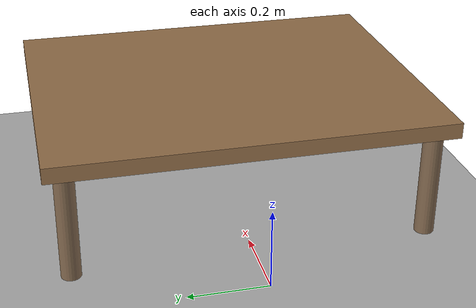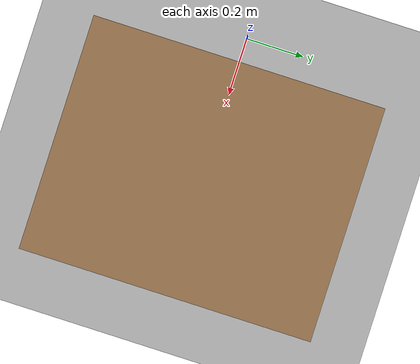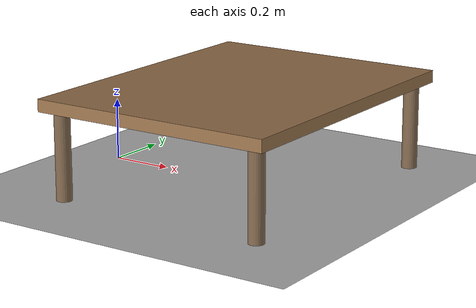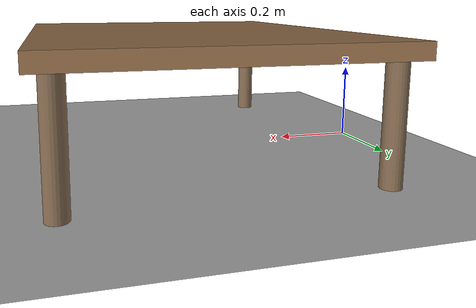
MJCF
<!-- Forge tabletop workspace.
     Provides the table surface, lighting, and ground plane.
     Robot and objects are loaded by the scenario builder. -->
<mujoco model="tabletop">
  <compiler angle="radian"/>

  <option timestep="0.002" gravity="0 0 -9.81" integrator="implicit"/>

  <visual>
    <headlight diffuse="0.6 0.6 0.6" ambient="0.3 0.3 0.3" specular="0 0 0"/>
  </visual>

  <asset>
    <texture name="grid" type="2d" builtin="checker" rgb1="0.8 0.8 0.8"
             rgb2="0.6 0.6 0.6" width="512" height="512"/>
    <material name="grid_mat" texture="grid" texrepeat="8 8" reflectance="0.1"/>
    <material name="table_mat" rgba="0.6 0.45 0.3 1" reflectance="0.05"/>
    <material name="red_mat" rgba="0.9 0.1 0.1 1"/>
    <material name="blue_mat" rgba="0.1 0.1 0.9 1"/>
    <material name="green_mat" rgba="0.1 0.7 0.1 0.3"/>
  </asset>

  <worldbody>
    <!-- Ground plane -->
    <geom name="floor" type="plane" size="2 2 0.01" material="grid_mat" condim="3"/>

    <!-- Lighting -->
    <light pos="0.5 0 1.5" dir="0 0 -1" diffuse="0.8 0.8 0.8"/>
    <light pos="-0.5 0.5 1.5" dir="0.5 -0.5 -1" diffuse="0.4 0.4 0.4"/>

    <!-- Table -->
    <body name="table" pos="0.5 0.0 0.3">
      <geom name="table_top" type="box" size="0.4 0.5 0.02" material="table_mat"
            mass="20" condim="4"/>
      <!-- Table legs -->
      <geom type="cylinder" pos="-0.35 -0.45 -0.15" size="0.025 0.15" rgba="0.5 0.4 0.3 1"/>
      <geom type="cylinder" pos="0.35 -0.45 -0.15" size="0.025 0.15" rgba="0.5 0.4 0.3 1"/>
      <geom type="cylinder" pos="-0.35 0.45 -0.15" size="0.025 0.15" rgba="0.5 0.4 0.3 1"/>
      <geom type="cylinder" pos="0.35 0.45 -0.15" size="0.025 0.15" rgba="0.5 0.4 0.3 1"/>
    </body>
  </worldbody>
</mujoco>
